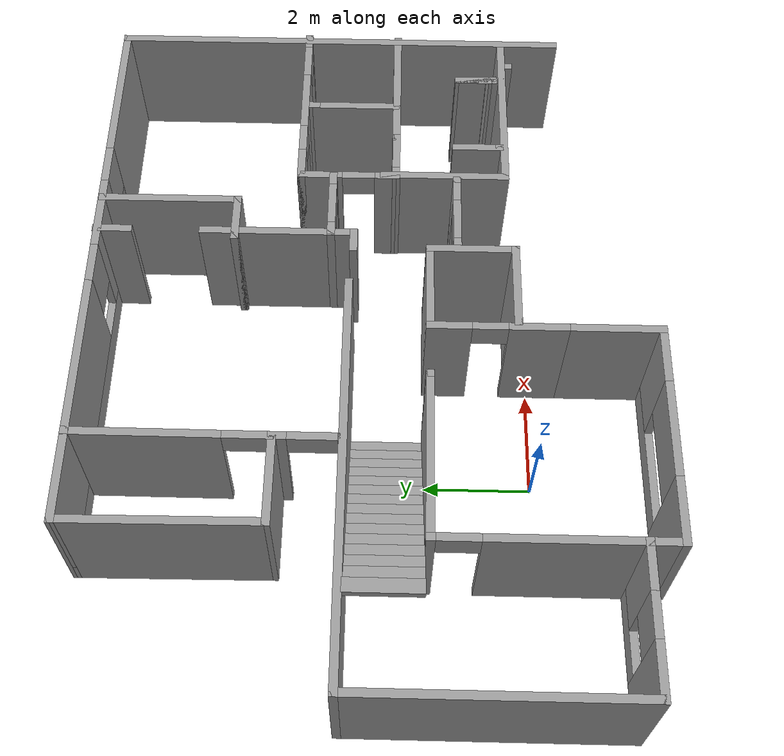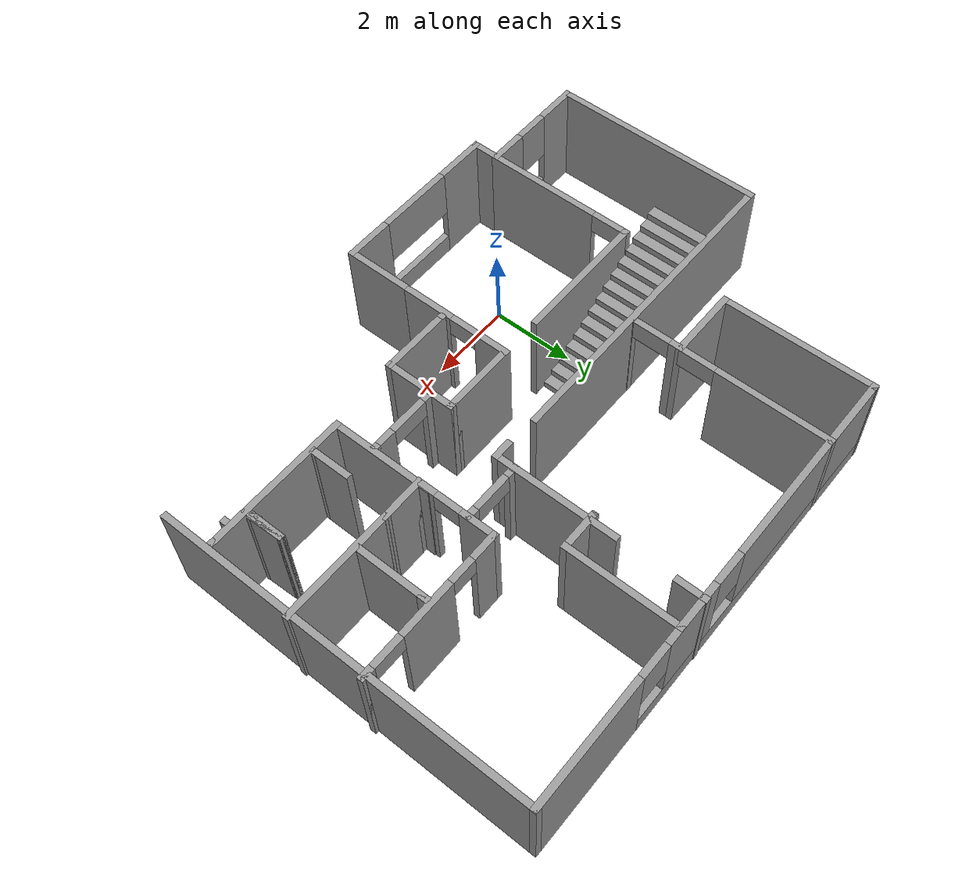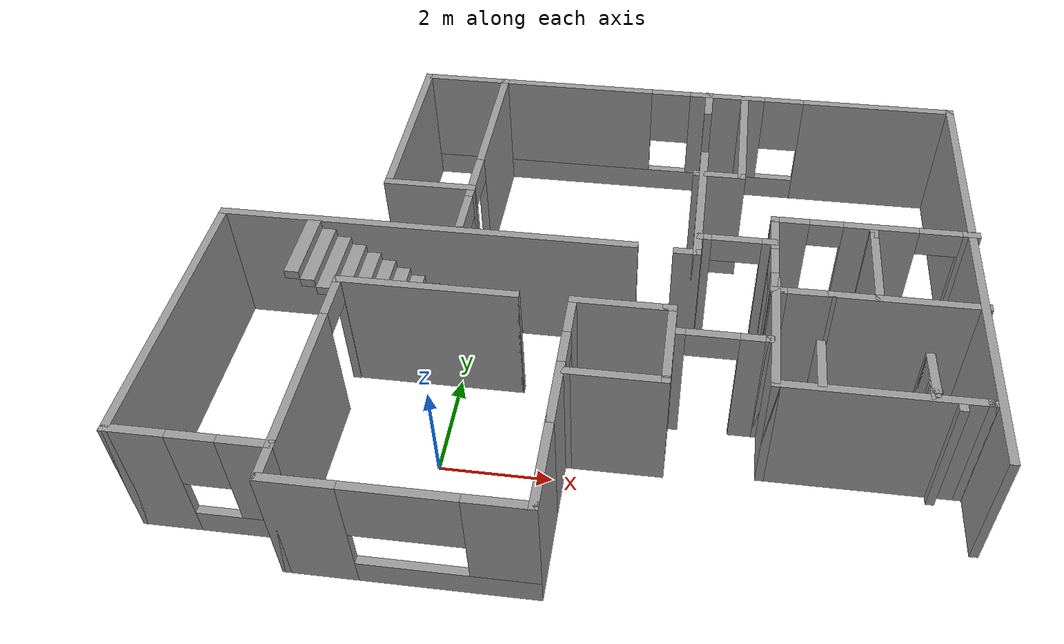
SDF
<sdf version="1.7">
 <model name="Floorplan4">
  <pose>2.26268 3.01833 0 0 -0 0</pose>
  <link name="Stairs_0">
   <visual name="Stairs_0_Visual_0">
    <pose>-1.48224 -0.300305 0.083333 0 -0 -1.5708</pose>
    <geometry><box><size>1.373 0.259133 0.166667</size></box></geometry>
    <material>
     <script><uri>file://media/materials/scripts/gazebo.material</uri><name>Gazebo/Grey</name></script>
     <ambient>1 1 1 1</ambient>
    </material>
    <meta><layer>0</layer></meta>
   </visual>
   <collision name="Stairs_0_Collision_0">
    <geometry><box><size>1.373 0.259133 0.166667</size></box></geometry>
    <pose>-1.48224 -0.300305 0.083333 0 -0 -1.5708</pose>
   </collision>
   <visual name="Stairs_0_Visual_1">
    <pose>-1.74138 -0.300305 0.25 0 -0 -1.5708</pose>
    <geometry><box><size>1.373 0.259133 0.166667</size></box></geometry>
    <material>
     <script><uri>file://media/materials/scripts/gazebo.material</uri><name>Gazebo/Grey</name></script>
     <ambient>1 1 1 1</ambient>
    </material>
    <meta><layer>0</layer></meta>
   </visual>
   <collision name="Stairs_0_Collision_1">
    <geometry><box><size>1.373 0.259133 0.166667</size></box></geometry>
    <pose>-1.74138 -0.300305 0.25 0 -0 -1.5708</pose>
   </collision>
   <visual name="Stairs_0_Visual_2">
    <pose>-2.00051 -0.300305 0.416667 0 -0 -1.5708</pose>
    <geometry><box><size>1.373 0.259133 0.166667</size></box></geometry>
    <material>
     <script><uri>file://media/materials/scripts/gazebo.material</uri><name>Gazebo/Grey</name></script>
     <ambient>1 1 1 1</ambient>
    </material>
    <meta><layer>0</layer></meta>
   </visual>
   <collision name="Stairs_0_Collision_2">
    <geometry><box><size>1.373 0.259133 0.166667</size></box></geometry>
    <pose>-2.00051 -0.300305 0.416667 0 -0 -1.5708</pose>
   </collision>
   <visual name="Stairs_0_Visual_3">
    <pose>-2.25964 -0.300305 0.583333 0 -0 -1.5708</pose>
    <geometry><box><size>1.373 0.259133 0.166667</size></box></geometry>
    <material>
     <script><uri>file://media/materials/scripts/gazebo.material</uri><name>Gazebo/Grey</name></script>
     <ambient>1 1 1 1</ambient>
    </material>
    <meta><layer>0</layer></meta>
   </visual>
   <collision name="Stairs_0_Collision_3">
    <geometry><box><size>1.373 0.259133 0.166667</size></box></geometry>
    <pose>-2.25964 -0.300305 0.583333 0 -0 -1.5708</pose>
   </collision>
   <visual name="Stairs_0_Visual_4">
    <pose>-2.51878 -0.300305 0.75 0 -0 -1.5708</pose>
    <geometry><box><size>1.373 0.259133 0.166667</size></box></geometry>
    <material>
     <script><uri>file://media/materials/scripts/gazebo.material</uri><name>Gazebo/Grey</name></script>
     <ambient>1 1 1 1</ambient>
    </material>
    <meta><layer>0</layer></meta>
   </visual>
   <collision name="Stairs_0_Collision_4">
    <geometry><box><size>1.373 0.259133 0.166667</size></box></geometry>
    <pose>-2.51878 -0.300305 0.75 0 -0 -1.5708</pose>
   </collision>
   <visual name="Stairs_0_Visual_5">
    <pose>-2.77791 -0.300305 0.916667 0 -0 -1.5708</pose>
    <geometry><box><size>1.373 0.259133 0.166667</size></box></geometry>
    <material>
     <script><uri>file://media/materials/scripts/gazebo.material</uri><name>Gazebo/Grey</name></script>
     <ambient>1 1 1 1</ambient>
    </material>
    <meta><layer>0</layer></meta>
   </visual>
   <collision name="Stairs_0_Collision_5">
    <geometry><box><size>1.373 0.259133 0.166667</size></box></geometry>
    <pose>-2.77791 -0.300305 0.916667 0 -0 -1.5708</pose>
   </collision>
   <visual name="Stairs_0_Visual_6">
    <pose>-3.03704 -0.300305 1.08333 0 -0 -1.5708</pose>
    <geometry><box><size>1.373 0.259133 0.166667</size></box></geometry>
    <material>
     <script><uri>file://media/materials/scripts/gazebo.material</uri><name>Gazebo/Grey</name></script>
     <ambient>1 1 1 1</ambient>
    </material>
    <meta><layer>0</layer></meta>
   </visual>
   <collision name="Stairs_0_Collision_6">
    <geometry><box><size>1.373 0.259133 0.166667</size></box></geometry>
    <pose>-3.03704 -0.300305 1.08333 0 -0 -1.5708</pose>
   </collision>
   <visual name="Stairs_0_Visual_7">
    <pose>-3.29618 -0.300305 1.25 0 -0 -1.5708</pose>
    <geometry><box><size>1.373 0.259133 0.166667</size></box></geometry>
    <material>
     <script><uri>file://media/materials/scripts/gazebo.material</uri><name>Gazebo/Grey</name></script>
     <ambient>1 1 1 1</ambient>
    </material>
    <meta><layer>0</layer></meta>
   </visual>
   <collision name="Stairs_0_Collision_7">
    <geometry><box><size>1.373 0.259133 0.166667</size></box></geometry>
    <pose>-3.29618 -0.300305 1.25 0 -0 -1.5708</pose>
   </collision>
   <visual name="Stairs_0_Visual_8">
    <pose>-3.55531 -0.300305 1.41667 0 -0 -1.5708</pose>
    <geometry><box><size>1.373 0.259133 0.166667</size></box></geometry>
    <material>
     <script><uri>file://media/materials/scripts/gazebo.material</uri><name>Gazebo/Grey</name></script>
     <ambient>1 1 1 1</ambient>
    </material>
    <meta><layer>0</layer></meta>
   </visual>
   <collision name="Stairs_0_Collision_8">
    <geometry><box><size>1.373 0.259133 0.166667</size></box></geometry>
    <pose>-3.55531 -0.300305 1.41667 0 -0 -1.5708</pose>
   </collision>
   <visual name="Stairs_0_Visual_9">
    <pose>-3.81444 -0.300305 1.58333 0 -0 -1.5708</pose>
    <geometry><box><size>1.373 0.259133 0.166667</size></box></geometry>
    <material>
     <script><uri>file://media/materials/scripts/gazebo.material</uri><name>Gazebo/Grey</name></script>
     <ambient>1 1 1 1</ambient>
    </material>
    <meta><layer>0</layer></meta>
   </visual>
   <collision name="Stairs_0_Collision_9">
    <geometry><box><size>1.373 0.259133 0.166667</size></box></geometry>
    <pose>-3.81444 -0.300305 1.58333 0 -0 -1.5708</pose>
   </collision>
   <visual name="Stairs_0_Visual_10">
    <pose>-4.07358 -0.300305 1.75 0 -0 -1.5708</pose>
    <geometry><box><size>1.373 0.259133 0.166667</size></box></geometry>
    <material>
     <script><uri>file://media/materials/scripts/gazebo.material</uri><name>Gazebo/Grey</name></script>
     <ambient>1 1 1 1</ambient>
    </material>
    <meta><layer>0</layer></meta>
   </visual>
   <collision name="Stairs_0_Collision_10">
    <geometry><box><size>1.373 0.259133 0.166667</size></box></geometry>
    <pose>-4.07358 -0.300305 1.75 0 -0 -1.5708</pose>
   </collision>
   <visual name="Stairs_0_Visual_11">
    <pose>-4.33271 -0.300305 1.91667 0 -0 -1.5708</pose>
    <geometry><box><size>1.373 0.259133 0.166667</size></box></geometry>
    <material>
     <script><uri>file://media/materials/scripts/gazebo.material</uri><name>Gazebo/Grey</name></script>
     <ambient>1 1 1 1</ambient>
    </material>
    <meta><layer>0</layer></meta>
   </visual>
   <collision name="Stairs_0_Collision_11">
    <geometry><box><size>1.373 0.259133 0.166667</size></box></geometry>
    <pose>-4.33271 -0.300305 1.91667 0 -0 -1.5708</pose>
   </collision>
   <visual name="Stairs_0_Visual_12">
    <pose>-4.59184 -0.300305 2.08333 0 -0 -1.5708</pose>
    <geometry><box><size>1.373 0.259133 0.166667</size></box></geometry>
    <material>
     <script><uri>file://media/materials/scripts/gazebo.material</uri><name>Gazebo/Grey</name></script>
     <ambient>1 1 1 1</ambient>
    </material>
    <meta><layer>0</layer></meta>
   </visual>
   <collision name="Stairs_0_Collision_12">
    <geometry><box><size>1.373 0.259133 0.166667</size></box></geometry>
    <pose>-4.59184 -0.300305 2.08333 0 -0 -1.5708</pose>
   </collision>
   <visual name="Stairs_0_Visual_13">
    <pose>-4.85098 -0.300305 2.25 0 -0 -1.5708</pose>
    <geometry><box><size>1.373 0.259133 0.166667</size></box></geometry>
    <material>
     <script><uri>file://media/materials/scripts/gazebo.material</uri><name>Gazebo/Grey</name></script>
     <ambient>1 1 1 1</ambient>
    </material>
    <meta><layer>0</layer></meta>
   </visual>
   <collision name="Stairs_0_Collision_13">
    <geometry><box><size>1.373 0.259133 0.166667</size></box></geometry>
    <pose>-4.85098 -0.300305 2.25 0 -0 -1.5708</pose>
   </collision>
   <visual name="Stairs_0_Visual_14">
    <pose>-5.11011 -0.300305 2.41667 0 -0 -1.5708</pose>
    <geometry><box><size>1.373 0.259133 0.166667</size></box></geometry>
    <material>
     <script><uri>file://media/materials/scripts/gazebo.material</uri><name>Gazebo/Grey</name></script>
     <ambient>1 1 1 1</ambient>
    </material>
    <meta><layer>0</layer></meta>
   </visual>
   <collision name="Stairs_0_Collision_14">
    <geometry><box><size>1.373 0.259133 0.166667</size></box></geometry>
    <pose>-5.11011 -0.300305 2.41667 0 -0 -1.5708</pose>
   </collision>
  </link>
  <link name="Wall_0">
   <collision name="Wall_0_Collision">
    <geometry><box><size>9 0.15 2.5</size></box></geometry>
    <pose>0 0 1.25 0 -0 0</pose>
   </collision>
   <visual name="Wall_0_Visual">
    <pose>0 0 1.25 0 -0 0</pose>
    <geometry><box><size>9 0.15 2.5</size></box></geometry>
    <material>
     <script><uri>file://media/materials/scripts/gazebo.material</uri><name>Gazebo/Grey</name></script>
     <ambient>1 1 1 1</ambient>
    </material>
    <meta><layer>0</layer></meta>
   </visual>
   <pose>6.77354 0.814241 0 0 -0 1.5708</pose>
  </link>
  <link name="Wall_11">
   <collision name="Wall_11_Collision">
    <geometry><box><size>0.75 0.15 2.5</size></box></geometry>
    <pose>0 0 1.25 0 -0 0</pose>
   </collision>
   <visual name="Wall_11_Visual">
    <pose>0 0 1.25 0 -0 0</pose>
    <geometry><box><size>0.75 0.15 2.5</size></box></geometry>
    <material>
     <script><uri>file://media/materials/scripts/gazebo.material</uri><name>Gazebo/Grey</name></script>
     <ambient>1 1 1 1</ambient>
    </material>
    <meta><layer>0</layer></meta>
   </visual>
   <pose>1.87688 4.95601 0 0 -0 1.5708</pose>
  </link>
  <link name="Wall_13">
   <collision name="Wall_13_Collision">
    <geometry><box><size>2.75 0.15 2.5</size></box></geometry>
    <pose>0 0 1.25 0 -0 0</pose>
   </collision>
   <visual name="Wall_13_Visual">
    <pose>0 0 1.25 0 -0 0</pose>
    <geometry><box><size>2.75 0.15 2.5</size></box></geometry>
    <material>
     <script><uri>file://media/materials/scripts/gazebo.material</uri><name>Gazebo/Grey</name></script>
     <ambient>1 1 1 1</ambient>
    </material>
    <meta><layer>0</layer></meta>
   </visual>
   <pose>2.60855 3.92948 0 0 -0 -1.5708</pose>
  </link>
  <link name="Wall_14">
   <collision name="Wall_14_Collision">
    <geometry><box><size>1 0.15 2.5</size></box></geometry>
    <pose>0 0 1.25 0 -0 0</pose>
   </collision>
   <visual name="Wall_14_Visual">
    <pose>0 0 1.25 0 -0 0</pose>
    <geometry><box><size>1 0.15 2.5</size></box></geometry>
    <material>
     <script><uri>file://media/materials/scripts/gazebo.material</uri><name>Gazebo/Grey</name></script>
     <ambient>1 1 1 1</ambient>
    </material>
    <meta><layer>0</layer></meta>
   </visual>
   <pose>2.18355 2.62948 0 0 -0 3.14159</pose>
  </link>
  <link name="Wall_15">
   <collision name="Wall_15_Collision">
    <geometry><box><size>0.15 0.15 2.5</size></box></geometry>
    <pose>0 0 1.25 0 -0 0</pose>
   </collision>
   <visual name="Wall_15_Visual">
    <pose>0 0 1.25 0 -0 0</pose>
    <geometry><box><size>0.15 0.15 2.5</size></box></geometry>
    <material>
     <script><uri>file://media/materials/scripts/gazebo.material</uri><name>Gazebo/Grey</name></script>
     <ambient>1 1 1 1</ambient>
    </material>
    <meta><layer>0</layer></meta>
   </visual>
   <pose>1.75855 2.62948 0 0 -0 0</pose>
  </link>
  <link name="Wall_17">
   <collision name="Wall_17_Collision">
    <geometry><box><size>3 0.15 2.5</size></box></geometry>
    <pose>0 0 1.25 0 -0 0</pose>
   </collision>
   <visual name="Wall_17_Visual">
    <pose>0 0 1.25 0 -0 0</pose>
    <geometry><box><size>3 0.15 2.5</size></box></geometry>
    <material>
     <script><uri>file://media/materials/scripts/gazebo.material</uri><name>Gazebo/Grey</name></script>
     <ambient>1 1 1 1</ambient>
    </material>
    <meta><layer>0</layer></meta>
   </visual>
   <pose>1.87688 1.80723 0 0 -0 -1.5708</pose>
  </link>
  <link name="Wall_18">
   <collision name="Wall_18_Collision">
    <geometry><box><size>0.5 0.15 2.5</size></box></geometry>
    <pose>0 0 1.25 0 -0 0</pose>
   </collision>
   <visual name="Wall_18_Visual">
    <pose>0 0 1.25 0 -0 0</pose>
    <geometry><box><size>0.5 0.15 2.5</size></box></geometry>
    <material>
     <script><uri>file://media/materials/scripts/gazebo.material</uri><name>Gazebo/Grey</name></script>
     <ambient>1 1 1 1</ambient>
    </material>
    <meta><layer>0</layer></meta>
   </visual>
   <pose>1.70188 0.38223 0 0 -0 3.14159</pose>
  </link>
  <link name="Wall_20">
   <collision name="Wall_20_Collision">
    <geometry><box><size>7.75 0.15 2.5</size></box></geometry>
    <pose>0 0 1.25 0 -0 0</pose>
   </collision>
   <visual name="Wall_20_Visual">
    <pose>0 0 1.25 0 -0 0</pose>
    <geometry><box><size>7.75 0.15 2.5</size></box></geometry>
    <material>
     <script><uri>file://media/materials/scripts/gazebo.material</uri><name>Gazebo/Grey</name></script>
     <ambient>1 1 1 1</ambient>
    </material>
    <meta><layer>0</layer></meta>
   </visual>
   <pose>-3.05028 0.443986 0 0 -0 3.14159</pose>
  </link>
  <link name="Wall_21">
   <collision name="Wall_21_Collision">
    <geometry><box><size>5.25 0.15 2.5</size></box></geometry>
    <pose>0 0 1.25 0 -0 0</pose>
   </collision>
   <visual name="Wall_21_Visual">
    <pose>0 0 1.25 0 -0 0</pose>
    <geometry><box><size>5.25 0.15 2.5</size></box></geometry>
    <material>
     <script><uri>file://media/materials/scripts/gazebo.material</uri><name>Gazebo/Grey</name></script>
     <ambient>1 1 1 1</ambient>
    </material>
    <meta><layer>0</layer></meta>
   </visual>
   <pose>-6.85028 -2.10601 0 0 -0 -1.5708</pose>
  </link>
  <link name="Wall_22">
   <pose>-5.55028 -4.65601 0 0 -0 0</pose>
   <visual name="Wall_22_Visual_0">
    <pose>-0.858994 0 1.25 0 -0 0</pose>
    <geometry><box><size>1.03201 0.15 2.5</size></box></geometry>
    <material>
     <script><uri>file://media/materials/scripts/gazebo.material</uri><name>Gazebo/Grey</name></script>
     <ambient>1 1 1 1</ambient>
    </material>
    <meta><layer>0</layer></meta>
   </visual>
   <collision name="Wall_22_Collision_0">
    <geometry><box><size>1.03201 0.15 2.5</size></box></geometry>
    <pose>-0.858994 0 1.25 0 -0 0</pose>
   </collision>
   <visual name="Wall_22_Visual_1">
    <pose>0.516006 0 0.25 0 -0 0</pose>
    <geometry><box><size>1.71799 0.15 0.5</size></box></geometry>
    <material>
     <script><uri>file://media/materials/scripts/gazebo.material</uri><name>Gazebo/Grey</name></script>
     <ambient>1 1 1 1</ambient>
    </material>
    <meta><layer>0</layer></meta>
   </visual>
   <collision name="Wall_22_Collision_1">
    <geometry><box><size>1.71799 0.15 0.5</size></box></geometry>
    <pose>0.516006 0 0.25 0 -0 0</pose>
   </collision>
   <visual name="Wall_22_Visual_2">
    <pose>0.916006 0 1.5 0 -0 0</pose>
    <geometry><box><size>0.917989 0.15 2</size></box></geometry>
    <material>
     <script><uri>file://media/materials/scripts/gazebo.material</uri><name>Gazebo/Grey</name></script>
     <ambient>1 1 1 1</ambient>
    </material>
    <meta><layer>0</layer></meta>
   </visual>
   <collision name="Wall_22_Collision_2">
    <geometry><box><size>0.917989 0.15 2</size></box></geometry>
    <pose>0.916006 0 1.5 0 -0 0</pose>
   </collision>
   <visual name="Wall_22_Visual_3">
    <pose>0.057011 0 1.9 0 -0 0</pose>
    <geometry><box><size>0.8 0.15 1.2</size></box></geometry>
    <material>
     <script><uri>file://media/materials/scripts/gazebo.material</uri><name>Gazebo/Grey</name></script>
     <ambient>1 1 1 1</ambient>
    </material>
    <meta><layer>0</layer></meta>
   </visual>
   <collision name="Wall_22_Collision_3">
    <geometry><box><size>0.8 0.15 1.2</size></box></geometry>
    <pose>0.057011 0 1.9 0 -0 0</pose>
   </collision>
  </link>
  <link name="Wall_23">
   <collision name="Wall_23_Collision">
    <geometry><box><size>0.75 0.15 2.5</size></box></geometry>
    <pose>0 0 1.25 0 -0 0</pose>
   </collision>
   <visual name="Wall_23_Visual">
    <pose>0 0 1.25 0 -0 0</pose>
    <geometry><box><size>0.75 0.15 2.5</size></box></geometry>
    <material>
     <script><uri>file://media/materials/scripts/gazebo.material</uri><name>Gazebo/Grey</name></script>
     <ambient>1 1 1 1</ambient>
    </material>
    <meta><layer>0</layer></meta>
   </visual>
   <pose>-4.25028 -4.95601 0 0 -0 -1.5708</pose>
  </link>
  <link name="Wall_24">
   <pose>-2.20028 -5.25601 0 0 -0 0</pose>
   <visual name="Wall_24_Visual_0">
    <pose>-1.49218 0 1.25 0 -0 0</pose>
    <geometry><box><size>1.26565 0.15 2.5</size></box></geometry>
    <material>
     <script><uri>file://media/materials/scripts/gazebo.material</uri><name>Gazebo/Grey</name></script>
     <ambient>1 1 1 1</ambient>
    </material>
    <meta><layer>0</layer></meta>
   </visual>
   <collision name="Wall_24_Collision_0">
    <geometry><box><size>1.26565 0.15 2.5</size></box></geometry>
    <pose>-1.49218 0 1.25 0 -0 0</pose>
   </collision>
   <visual name="Wall_24_Visual_1">
    <pose>0.632824 0 0.25 0 -0 0</pose>
    <geometry><box><size>2.98435 0.15 0.5</size></box></geometry>
    <material>
     <script><uri>file://media/materials/scripts/gazebo.material</uri><name>Gazebo/Grey</name></script>
     <ambient>1 1 1 1</ambient>
    </material>
    <meta><layer>0</layer></meta>
   </visual>
   <collision name="Wall_24_Collision_1">
    <geometry><box><size>2.98435 0.15 0.5</size></box></geometry>
    <pose>0.632824 0 0.25 0 -0 0</pose>
   </collision>
   <visual name="Wall_24_Visual_2">
    <pose>1.55421 0 1.5 0 -0 0</pose>
    <geometry><box><size>1.14157 0.15 2</size></box></geometry>
    <material>
     <script><uri>file://media/materials/scripts/gazebo.material</uri><name>Gazebo/Grey</name></script>
     <ambient>1 1 1 1</ambient>
    </material>
    <meta><layer>0</layer></meta>
   </visual>
   <collision name="Wall_24_Collision_2">
    <geometry><box><size>1.14157 0.15 2</size></box></geometry>
    <pose>1.55421 0 1.5 0 -0 0</pose>
   </collision>
   <visual name="Wall_24_Visual_3">
    <pose>0.062037 0 1.9 0 -0 0</pose>
    <geometry><box><size>1.84278 0.15 1.2</size></box></geometry>
    <material>
     <script><uri>file://media/materials/scripts/gazebo.material</uri><name>Gazebo/Grey</name></script>
     <ambient>1 1 1 1</ambient>
    </material>
    <meta><layer>0</layer></meta>
   </visual>
   <collision name="Wall_24_Collision_3">
    <geometry><box><size>1.84278 0.15 1.2</size></box></geometry>
    <pose>0.062037 0 1.9 0 -0 0</pose>
   </collision>
  </link>
  <link name="Wall_25">
   <collision name="Wall_25_Collision">
    <geometry><box><size>1.75 0.15 2.5</size></box></geometry>
    <pose>0 0 1.25 0 -0 0</pose>
   </collision>
   <visual name="Wall_25_Visual">
    <pose>0 0 1.25 0 -0 0</pose>
    <geometry><box><size>1.75 0.15 2.5</size></box></geometry>
    <material>
     <script><uri>file://media/materials/scripts/gazebo.material</uri><name>Gazebo/Grey</name></script>
     <ambient>1 1 1 1</ambient>
    </material>
    <meta><layer>0</layer></meta>
   </visual>
   <pose>-0.150279 -4.45601 0 0 -0 1.5708</pose>
  </link>
  <link name="Wall_26">
   <pose>-0.150279 -2.35601 0 0 -0 1.5708</pose>
   <visual name="Wall_26_Visual_0">
    <pose>-0.749014 0 1.25 0 -0 0</pose>
    <geometry><box><size>1.25197 0.15 2.5</size></box></geometry>
    <material>
     <script><uri>file://media/materials/scripts/gazebo.material</uri><name>Gazebo/Grey</name></script>
     <ambient>1 1 1 1</ambient>
    </material>
    <meta><layer>0</layer></meta>
   </visual>
   <collision name="Wall_26_Collision_0">
    <geometry><box><size>1.25197 0.15 2.5</size></box></geometry>
    <pose>-0.749014 0 1.25 0 -0 0</pose>
   </collision>
   <visual name="Wall_26_Visual_1">
    <pose>0.956973 0 1.25 0 -0 0</pose>
    <geometry><box><size>0.836053 0.15 2.5</size></box></geometry>
    <material>
     <script><uri>file://media/materials/scripts/gazebo.material</uri><name>Gazebo/Grey</name></script>
     <ambient>1 1 1 1</ambient>
    </material>
    <meta><layer>0</layer></meta>
   </visual>
   <collision name="Wall_26_Collision_1">
    <geometry><box><size>0.836053 0.15 2.5</size></box></geometry>
    <pose>0.956973 0 1.25 0 -0 0</pose>
   </collision>
   <visual name="Wall_26_Visual_2">
    <pose>0.20796 0 2.25 0 -0 0</pose>
    <geometry><box><size>0.661975 0.15 0.5</size></box></geometry>
    <material>
     <script><uri>file://media/materials/scripts/gazebo.material</uri><name>Gazebo/Grey</name></script>
     <ambient>1 1 1 1</ambient>
    </material>
    <meta><layer>0</layer></meta>
   </visual>
   <collision name="Wall_26_Collision_2">
    <geometry><box><size>0.661975 0.15 0.5</size></box></geometry>
    <pose>0.20796 0 2.25 0 -0 0</pose>
   </collision>
  </link>
  <link name="Wall_27">
   <collision name="Wall_27_Collision">
    <geometry><box><size>1.75 0.15 2.5</size></box></geometry>
    <pose>0 0 1.25 0 -0 0</pose>
   </collision>
   <visual name="Wall_27_Visual">
    <pose>0 0 1.25 0 -0 0</pose>
    <geometry><box><size>1.75 0.15 2.5</size></box></geometry>
    <material>
     <script><uri>file://media/materials/scripts/gazebo.material</uri><name>Gazebo/Grey</name></script>
     <ambient>1 1 1 1</ambient>
    </material>
    <meta><layer>0</layer></meta>
   </visual>
   <pose>0.649721 -1.05601 0 0 -0 0</pose>
  </link>
  <link name="Wall_28">
   <collision name="Wall_28_Collision">
    <geometry><box><size>0.25 0.15 2.5</size></box></geometry>
    <pose>0 0 1.25 0 -0 0</pose>
   </collision>
   <visual name="Wall_28_Visual">
    <pose>0 0 1.25 0 -0 0</pose>
    <geometry><box><size>0.25 0.15 2.5</size></box></geometry>
    <material>
     <script><uri>file://media/materials/scripts/gazebo.material</uri><name>Gazebo/Grey</name></script>
     <ambient>1 1 1 1</ambient>
    </material>
    <meta><layer>0</layer></meta>
   </visual>
   <pose>1.49972 -1.05601 0 0 -0 0</pose>
  </link>
  <link name="Wall_29">
   <collision name="Wall_29_Collision">
    <geometry><box><size>1.75 0.15 2.5</size></box></geometry>
    <pose>0 0 1.25 0 -0 0</pose>
   </collision>
   <visual name="Wall_29_Visual">
    <pose>0 0 1.25 0 -0 0</pose>
    <geometry><box><size>1.75 0.15 2.5</size></box></geometry>
    <material>
     <script><uri>file://media/materials/scripts/gazebo.material</uri><name>Gazebo/Grey</name></script>
     <ambient>1 1 1 1</ambient>
    </material>
    <meta><layer>0</layer></meta>
   </visual>
   <pose>1.54972 -1.85601 0 0 -0 -1.5708</pose>
  </link>
  <link name="Wall_3">
   <collision name="Wall_3_Collision">
    <geometry><box><size>0.15 0.15 2.5</size></box></geometry>
    <pose>0 0 1.25 0 -0 0</pose>
   </collision>
   <visual name="Wall_3_Visual">
    <pose>0 0 1.25 0 -0 0</pose>
    <geometry><box><size>0.15 0.15 2.5</size></box></geometry>
    <material>
     <script><uri>file://media/materials/scripts/gazebo.material</uri><name>Gazebo/Grey</name></script>
     <ambient>1 1 1 1</ambient>
    </material>
    <meta><layer>0</layer></meta>
   </visual>
   <pose>6.15788 -2.66213 0 0 -0 0</pose>
  </link>
  <link name="Wall_30">
   <collision name="Wall_30_Collision">
    <geometry><box><size>1.75 0.15 2.5</size></box></geometry>
    <pose>0 0 1.25 0 -0 0</pose>
   </collision>
   <visual name="Wall_30_Visual">
    <pose>0 0 1.25 0 -0 0</pose>
    <geometry><box><size>1.75 0.15 2.5</size></box></geometry>
    <material>
     <script><uri>file://media/materials/scripts/gazebo.material</uri><name>Gazebo/Grey</name></script>
     <ambient>1 1 1 1</ambient>
    </material>
    <meta><layer>0</layer></meta>
   </visual>
   <pose>0.749721 -2.65601 0 0 -0 3.14159</pose>
  </link>
  <link name="Wall_31">
   <collision name="Wall_31_Collision">
    <geometry><box><size>0.15 0.15 2.5</size></box></geometry>
    <pose>0 0 1.25 0 -0 0</pose>
   </collision>
   <visual name="Wall_31_Visual">
    <pose>0 0 1.25 0 -0 0</pose>
    <geometry><box><size>0.15 0.15 2.5</size></box></geometry>
    <material>
     <script><uri>file://media/materials/scripts/gazebo.material</uri><name>Gazebo/Grey</name></script>
     <ambient>1 1 1 1</ambient>
    </material>
    <meta><layer>0</layer></meta>
   </visual>
   <pose>-0.050279 -2.65601 0 0 -0 0</pose>
  </link>
  <link name="Wall_33">
   <pose>-4.25028 -2.85601 0 0 -0 1.5708</pose>
   <visual name="Wall_33_Visual_0">
    <pose>-0.463048 0 1.25 0 -0 0</pose>
    <geometry><box><size>2.8239 0.15 2.5</size></box></geometry>
    <material>
     <script><uri>file://media/materials/scripts/gazebo.material</uri><name>Gazebo/Grey</name></script>
     <ambient>1 1 1 1</ambient>
    </material>
    <meta><layer>0</layer></meta>
   </visual>
   <collision name="Wall_33_Collision_0">
    <geometry><box><size>2.8239 0.15 2.5</size></box></geometry>
    <pose>-0.463048 0 1.25 0 -0 0</pose>
   </collision>
   <visual name="Wall_33_Visual_1">
    <pose>1.7945 0 1.25 0 -0 0</pose>
    <geometry><box><size>0.161005 0.15 2.5</size></box></geometry>
    <material>
     <script><uri>file://media/materials/scripts/gazebo.material</uri><name>Gazebo/Grey</name></script>
     <ambient>1 1 1 1</ambient>
    </material>
    <meta><layer>0</layer></meta>
   </visual>
   <collision name="Wall_33_Collision_1">
    <geometry><box><size>0.161005 0.15 2.5</size></box></geometry>
    <pose>1.7945 0 1.25 0 -0 0</pose>
   </collision>
   <visual name="Wall_33_Visual_2">
    <pose>1.33145 0 2.25 0 -0 0</pose>
    <geometry><box><size>0.765091 0.15 0.5</size></box></geometry>
    <material>
     <script><uri>file://media/materials/scripts/gazebo.material</uri><name>Gazebo/Grey</name></script>
     <ambient>1 1 1 1</ambient>
    </material>
    <meta><layer>0</layer></meta>
   </visual>
   <collision name="Wall_33_Collision_2">
    <geometry><box><size>0.765091 0.15 0.5</size></box></geometry>
    <pose>1.33145 0 2.25 0 -0 0</pose>
   </collision>
  </link>
  <link name="Wall_34">
   <collision name="Wall_34_Collision">
    <geometry><box><size>3.25 0.15 2.5</size></box></geometry>
    <pose>0 0 1.25 0 -0 0</pose>
   </collision>
   <visual name="Wall_34_Visual">
    <pose>0 0 1.25 0 -0 0</pose>
    <geometry><box><size>3.25 0.15 2.5</size></box></geometry>
    <material>
     <script><uri>file://media/materials/scripts/gazebo.material</uri><name>Gazebo/Grey</name></script>
     <ambient>1 1 1 1</ambient>
    </material>
    <meta><layer>0</layer></meta>
   </visual>
   <pose>-2.70028 -1.05601 0 0 -0 0</pose>
  </link>
  <link name="Wall_35">
   <collision name="Wall_35_Collision">
    <geometry><box><size>0.15 0.15 2.5</size></box></geometry>
    <pose>0 0 1.25 0 -0 0</pose>
   </collision>
   <visual name="Wall_35_Visual">
    <pose>0 0 1.25 0 -0 0</pose>
    <geometry><box><size>0.15 0.15 2.5</size></box></geometry>
    <material>
     <script><uri>file://media/materials/scripts/gazebo.material</uri><name>Gazebo/Grey</name></script>
     <ambient>1 1 1 1</ambient>
    </material>
    <meta><layer>0</layer></meta>
   </visual>
   <pose>-1.15028 -1.05601 0 0 -0 0</pose>
  </link>
  <link name="Wall_37">
   <pose>2.37196 -1.57624 0 0 -0 0</pose>
   <visual name="Wall_37_Visual_0">
    <pose>-0.726541 0 1.25 0 -0 0</pose>
    <geometry><box><size>0.296918 0.15 2.5</size></box></geometry>
    <material>
     <script><uri>file://media/materials/scripts/gazebo.material</uri><name>Gazebo/Grey</name></script>
     <ambient>1 1 1 1</ambient>
    </material>
    <meta><layer>0</layer></meta>
   </visual>
   <collision name="Wall_37_Collision_0">
    <geometry><box><size>0.296918 0.15 2.5</size></box></geometry>
    <pose>-0.726541 0 1.25 0 -0 0</pose>
   </collision>
   <visual name="Wall_37_Visual_1">
    <pose>0.598459 0 1.25 0 -0 0</pose>
    <geometry><box><size>0.553082 0.15 2.5</size></box></geometry>
    <material>
     <script><uri>file://media/materials/scripts/gazebo.material</uri><name>Gazebo/Grey</name></script>
     <ambient>1 1 1 1</ambient>
    </material>
    <meta><layer>0</layer></meta>
   </visual>
   <collision name="Wall_37_Collision_1">
    <geometry><box><size>0.553082 0.15 2.5</size></box></geometry>
    <pose>0.598459 0 1.25 0 -0 0</pose>
   </collision>
   <visual name="Wall_37_Visual_2">
    <pose>-0.128082 0 2.25 0 -0 0</pose>
    <geometry><box><size>0.9 0.15 0.5</size></box></geometry>
    <material>
     <script><uri>file://media/materials/scripts/gazebo.material</uri><name>Gazebo/Grey</name></script>
     <ambient>1 1 1 1</ambient>
    </material>
    <meta><layer>0</layer></meta>
   </visual>
   <collision name="Wall_37_Collision_2">
    <geometry><box><size>0.9 0.15 0.5</size></box></geometry>
    <pose>-0.128082 0 2.25 0 -0 0</pose>
   </collision>
  </link>
  <link name="Wall_38">
   <collision name="Wall_38_Collision">
    <geometry><box><size>0.15 0.15 2.5</size></box></geometry>
    <pose>0 0 1.25 0 -0 0</pose>
   </collision>
   <visual name="Wall_38_Visual">
    <pose>0 0 1.25 0 -0 0</pose>
    <geometry><box><size>0.15 0.15 2.5</size></box></geometry>
    <material>
     <script><uri>file://media/materials/scripts/gazebo.material</uri><name>Gazebo/Grey</name></script>
     <ambient>1 1 1 1</ambient>
    </material>
    <meta><layer>0</layer></meta>
   </visual>
   <pose>3.18182 -1.57624 0 0 -0 0</pose>
  </link>
  <link name="Wall_40">
   <collision name="Wall_40_Collision">
    <geometry><box><size>2.5 0.15 2.5</size></box></geometry>
    <pose>0 0 1.25 0 -0 0</pose>
   </collision>
   <visual name="Wall_40_Visual">
    <pose>0 0 1.25 0 -0 0</pose>
    <geometry><box><size>2.5 0.15 2.5</size></box></geometry>
    <material>
     <script><uri>file://media/materials/scripts/gazebo.material</uri><name>Gazebo/Grey</name></script>
     <ambient>1 1 1 1</ambient>
    </material>
    <meta><layer>0</layer></meta>
   </visual>
   <pose>3.27302 -1.3413 0 0 -0 -1.5708</pose>
  </link>
  <link name="Wall_41">
   <collision name="Wall_41_Collision">
    <geometry><box><size>3.5 0.15 2.5</size></box></geometry>
    <pose>0 0 1.25 0 -0 0</pose>
   </collision>
   <visual name="Wall_41_Visual">
    <pose>0 0 1.25 0 -0 0</pose>
    <geometry><box><size>3.5 0.15 2.5</size></box></geometry>
    <material>
     <script><uri>file://media/materials/scripts/gazebo.material</uri><name>Gazebo/Grey</name></script>
     <ambient>1 1 1 1</ambient>
    </material>
    <meta><layer>0</layer></meta>
   </visual>
   <pose>4.94802 -2.5163 0 0 -0 0</pose>
  </link>
  <link name="Wall_42">
   <collision name="Wall_42_Collision">
    <geometry><box><size>0.15 0.15 2.5</size></box></geometry>
    <pose>0 0 1.25 0 -0 0</pose>
   </collision>
   <visual name="Wall_42_Visual">
    <pose>0 0 1.25 0 -0 0</pose>
    <geometry><box><size>0.15 0.15 2.5</size></box></geometry>
    <material>
     <script><uri>file://media/materials/scripts/gazebo.material</uri><name>Gazebo/Grey</name></script>
     <ambient>1 1 1 1</ambient>
    </material>
    <meta><layer>0</layer></meta>
   </visual>
   <pose>6.62302 -2.5163 0 0 -0 0</pose>
  </link>
  <link name="Wall_44">
   <collision name="Wall_44_Collision">
    <geometry><box><size>1 0.15 2.5</size></box></geometry>
    <pose>0 0 1.25 0 -0 0</pose>
   </collision>
   <visual name="Wall_44_Visual">
    <pose>0 0 1.25 0 -0 0</pose>
    <geometry><box><size>1 0.15 2.5</size></box></geometry>
    <material>
     <script><uri>file://media/materials/scripts/gazebo.material</uri><name>Gazebo/Grey</name></script>
     <ambient>1 1 1 1</ambient>
    </material>
    <meta><layer>0</layer></meta>
   </visual>
   <pose>4.00073 -2.00124 0 0 -0 -1.5708</pose>
  </link>
  <link name="Wall_45">
   <collision name="Wall_45_Collision">
    <geometry><box><size>0.15 0.15 2.5</size></box></geometry>
    <pose>0 0 1.25 0 -0 0</pose>
   </collision>
   <visual name="Wall_45_Visual">
    <pose>0 0 1.25 0 -0 0</pose>
    <geometry><box><size>0.15 0.15 2.5</size></box></geometry>
    <material>
     <script><uri>file://media/materials/scripts/gazebo.material</uri><name>Gazebo/Grey</name></script>
     <ambient>1 1 1 1</ambient>
    </material>
    <meta><layer>0</layer></meta>
   </visual>
   <pose>4.00073 -2.42624 0 0 -0 0</pose>
  </link>
  <link name="Wall_47">
   <collision name="Wall_47_Collision">
    <geometry><box><size>0.75 0.15 2.5</size></box></geometry>
    <pose>0 0 1.25 0 -0 0</pose>
   </collision>
   <visual name="Wall_47_Visual">
    <pose>0 0 1.25 0 -0 0</pose>
    <geometry><box><size>0.75 0.15 2.5</size></box></geometry>
    <material>
     <script><uri>file://media/materials/scripts/gazebo.material</uri><name>Gazebo/Grey</name></script>
     <ambient>1 1 1 1</ambient>
    </material>
    <meta><layer>0</layer></meta>
   </visual>
   <pose>5.75179 -1.94446 0 0 -0 -1.5708</pose>
  </link>
  <link name="Wall_48">
   <collision name="Wall_48_Collision">
    <geometry><box><size>0.25 0.15 2.5</size></box></geometry>
    <pose>0 0 1.25 0 -0 0</pose>
   </collision>
   <visual name="Wall_48_Visual">
    <pose>0 0 1.25 0 -0 0</pose>
    <geometry><box><size>0.25 0.15 2.5</size></box></geometry>
    <material>
     <script><uri>file://media/materials/scripts/gazebo.material</uri><name>Gazebo/Grey</name></script>
     <ambient>1 1 1 1</ambient>
    </material>
    <meta><layer>0</layer></meta>
   </visual>
   <pose>5.76473 -2.29276 0 0 -0 -1.309</pose>
  </link>
  <link name="Wall_5">
   <pose>1.34854 5.23924 0 0 -0 3.14159</pose>
   <visual name="Wall_5_Visual_0">
    <pose>-3.98357 0 1.25 0 -0 0</pose>
    <geometry><box><size>3.03285 0.15 2.5</size></box></geometry>
    <material>
     <script><uri>file://media/materials/scripts/gazebo.material</uri><name>Gazebo/Grey</name></script>
     <ambient>1 1 1 1</ambient>
    </material>
    <meta><layer>0</layer></meta>
   </visual>
   <collision name="Wall_5_Collision_0">
    <geometry><box><size>3.03285 0.15 2.5</size></box></geometry>
    <pose>-3.98357 0 1.25 0 -0 0</pose>
   </collision>
   <visual name="Wall_5_Visual_1">
    <pose>1.51643 0 0.25 0 -0 0</pose>
    <geometry><box><size>7.96715 0.15 0.5</size></box></geometry>
    <material>
     <script><uri>file://media/materials/scripts/gazebo.material</uri><name>Gazebo/Grey</name></script>
     <ambient>1 1 1 1</ambient>
    </material>
    <meta><layer>0</layer></meta>
   </visual>
   <collision name="Wall_5_Collision_1">
    <geometry><box><size>7.96715 0.15 0.5</size></box></geometry>
    <pose>1.51643 0 0.25 0 -0 0</pose>
   </collision>
   <visual name="Wall_5_Visual_2">
    <pose>-0.899688 0 1.5 0 -0 0</pose>
    <geometry><box><size>1.53492 0.15 2</size></box></geometry>
    <material>
     <script><uri>file://media/materials/scripts/gazebo.material</uri><name>Gazebo/Grey</name></script>
     <ambient>1 1 1 1</ambient>
    </material>
    <meta><layer>0</layer></meta>
   </visual>
   <collision name="Wall_5_Collision_2">
    <geometry><box><size>1.53492 0.15 2</size></box></geometry>
    <pose>-0.899688 0 1.5 0 -0 0</pose>
   </collision>
   <visual name="Wall_5_Visual_3">
    <pose>3.08388 0 1.5 0 -0 0</pose>
    <geometry><box><size>4.83223 0.15 2</size></box></geometry>
    <material>
     <script><uri>file://media/materials/scripts/gazebo.material</uri><name>Gazebo/Grey</name></script>
     <ambient>1 1 1 1</ambient>
    </material>
    <meta><layer>0</layer></meta>
   </visual>
   <collision name="Wall_5_Collision_3">
    <geometry><box><size>4.83223 0.15 2</size></box></geometry>
    <pose>3.08388 0 1.5 0 -0 0</pose>
   </collision>
   <visual name="Wall_5_Visual_4">
    <pose>-2.06715 0 1.9 0 -0 0</pose>
    <geometry><box><size>0.8 0.15 1.2</size></box></geometry>
    <material>
     <script><uri>file://media/materials/scripts/gazebo.material</uri><name>Gazebo/Grey</name></script>
     <ambient>1 1 1 1</ambient>
    </material>
    <meta><layer>0</layer></meta>
   </visual>
   <collision name="Wall_5_Collision_4">
    <geometry><box><size>0.8 0.15 1.2</size></box></geometry>
    <pose>-2.06715 0 1.9 0 -0 0</pose>
   </collision>
   <visual name="Wall_5_Visual_5">
    <pose>0.26777 0 1.9 0 -0 0</pose>
    <geometry><box><size>0.8 0.15 1.2</size></box></geometry>
    <material>
     <script><uri>file://media/materials/scripts/gazebo.material</uri><name>Gazebo/Grey</name></script>
     <ambient>1 1 1 1</ambient>
    </material>
    <meta><layer>0</layer></meta>
   </visual>
   <collision name="Wall_5_Collision_5">
    <geometry><box><size>0.8 0.15 1.2</size></box></geometry>
    <pose>0.26777 0 1.9 0 -0 0</pose>
   </collision>
  </link>
  <link name="Wall_50">
   <collision name="Wall_50_Collision">
    <geometry><box><size>0.847073 0.15 2.5</size></box></geometry>
    <pose>0 0 1.25 0 -0 0</pose>
   </collision>
   <visual name="Wall_50_Visual">
    <pose>0 0 1.25 0 -0 0</pose>
    <geometry><box><size>0.847073 0.15 2.5</size></box></geometry>
    <material>
     <script><uri>file://media/materials/scripts/gazebo.material</uri><name>Gazebo/Grey</name></script>
     <ambient>1 1 1 1</ambient>
    </material>
    <meta><layer>0</layer></meta>
   </visual>
   <pose>5.76473 -1.99276 0 0 -0 1.60793</pose>
  </link>
  <link name="Wall_51">
   <collision name="Wall_51_Collision">
    <geometry><box><size>1 0.15 2.5</size></box></geometry>
    <pose>0 0 1.25 0 -0 0</pose>
   </collision>
   <visual name="Wall_51_Visual">
    <pose>0 0 1.25 0 -0 0</pose>
    <geometry><box><size>1 0.15 2.5</size></box></geometry>
    <material>
     <script><uri>file://media/materials/scripts/gazebo.material</uri><name>Gazebo/Grey</name></script>
     <ambient>1 1 1 1</ambient>
    </material>
    <meta><layer>0</layer></meta>
   </visual>
   <pose>5.75179 -2.06946 0 0 -0 -1.5708</pose>
  </link>
  <link name="Wall_52">
   <collision name="Wall_52_Collision">
    <geometry><box><size>0.15 0.15 2.5</size></box></geometry>
    <pose>0 0 1.25 0 -0 0</pose>
   </collision>
   <visual name="Wall_52_Visual">
    <pose>0 0 1.25 0 -0 0</pose>
    <geometry><box><size>0.15 0.15 2.5</size></box></geometry>
    <material>
     <script><uri>file://media/materials/scripts/gazebo.material</uri><name>Gazebo/Grey</name></script>
     <ambient>1 1 1 1</ambient>
    </material>
    <meta><layer>0</layer></meta>
   </visual>
   <pose>5.75179 -2.49446 0 0 -0 0</pose>
  </link>
  <link name="Wall_54">
   <collision name="Wall_54_Collision">
    <geometry><box><size>2.75 0.15 2.5</size></box></geometry>
    <pose>0 0 1.25 0 -0 0</pose>
   </collision>
   <visual name="Wall_54_Visual">
    <pose>0 0 1.25 0 -0 0</pose>
    <geometry><box><size>2.75 0.15 2.5</size></box></geometry>
    <material>
     <script><uri>file://media/materials/scripts/gazebo.material</uri><name>Gazebo/Grey</name></script>
     <ambient>1 1 1 1</ambient>
    </material>
    <meta><layer>0</layer></meta>
   </visual>
   <pose>5.52062 -0.393709 0 0 -0 3.14159</pose>
  </link>
  <link name="Wall_55">
   <collision name="Wall_55_Collision">
    <geometry><box><size>0.15 0.15 2.5</size></box></geometry>
    <pose>0 0 1.25 0 -0 0</pose>
   </collision>
   <visual name="Wall_55_Visual">
    <pose>0 0 1.25 0 -0 0</pose>
    <geometry><box><size>0.15 0.15 2.5</size></box></geometry>
    <material>
     <script><uri>file://media/materials/scripts/gazebo.material</uri><name>Gazebo/Grey</name></script>
     <ambient>1 1 1 1</ambient>
    </material>
    <meta><layer>0</layer></meta>
   </visual>
   <pose>4.22061 -0.393709 0 0 -0 0</pose>
  </link>
  <link name="Wall_57">
   <pose>3.73545 -0.397699 0 0 -0 -3.13337</pose>
   <visual name="Wall_57_Visual_0">
    <pose>0 0 1.25 0 -0 0</pose>
    <geometry><box><size>1.12037 0.15 2.5</size></box></geometry>
    <material>
     <script><uri>file://media/materials/scripts/gazebo.material</uri><name>Gazebo/Grey</name></script>
     <ambient>1 1 1 1</ambient>
    </material>
    <meta><layer>0</layer></meta>
   </visual>
   <collision name="Wall_57_Collision_0">
    <geometry><box><size>1.12037 0.15 2.5</size></box></geometry>
    <pose>0 0 1.25 0 -0 0</pose>
   </collision>
   <visual name="Wall_57_Visual_1">
    <pose>0.417275 0 1.25 0 -0 0</pose>
    <geometry><box><size>0.285819 0.15 2.5</size></box></geometry>
    <material>
     <script><uri>file://media/materials/scripts/gazebo.material</uri><name>Gazebo/Grey</name></script>
     <ambient>1 1 1 1</ambient>
    </material>
    <meta><layer>0</layer></meta>
   </visual>
   <collision name="Wall_57_Collision_1">
    <geometry><box><size>0.285819 0.15 2.5</size></box></geometry>
    <pose>0.417275 0 1.25 0 -0 0</pose>
   </collision>
  </link>
  <link name="Wall_58">
   <collision name="Wall_58_Collision">
    <geometry><box><size>0.15 0.15 2.5</size></box></geometry>
    <pose>0 0 1.25 0 -0 0</pose>
   </collision>
   <visual name="Wall_58_Visual">
    <pose>0 0 1.25 0 -0 0</pose>
    <geometry><box><size>0.15 0.15 2.5</size></box></geometry>
    <material>
     <script><uri>file://media/materials/scripts/gazebo.material</uri><name>Gazebo/Grey</name></script>
     <ambient>1 1 1 1</ambient>
    </material>
    <meta><layer>0</layer></meta>
   </visual>
   <pose>3.25028 -0.401688 0 0 -0 0</pose>
  </link>
  <link name="Wall_6">
   <collision name="Wall_6_Collision">
    <geometry><box><size>3.69809 0.15 2.5</size></box></geometry>
    <pose>0 0 1.25 0 -0 0</pose>
   </collision>
   <visual name="Wall_6_Visual">
    <pose>0 0 1.25 0 -0 0</pose>
    <geometry><box><size>3.69809 0.15 2.5</size></box></geometry>
    <material>
     <script><uri>file://media/materials/scripts/gazebo.material</uri><name>Gazebo/Grey</name></script>
     <ambient>1 1 1 1</ambient>
    </material>
    <meta><layer>0</layer></meta>
   </visual>
   <pose>-4.06346 3.46525 0 0 -0 -1.56347</pose>
  </link>
  <link name="Wall_60">
   <pose>5.05028 1.44831 0 0 -0 0</pose>
   <visual name="Wall_60_Visual_0">
    <pose>-1.52818 0 1.25 0 -0 0</pose>
    <geometry><box><size>0.693647 0.15 2.5</size></box></geometry>
    <material>
     <script><uri>file://media/materials/scripts/gazebo.material</uri><name>Gazebo/Grey</name></script>
     <ambient>1 1 1 1</ambient>
    </material>
    <meta><layer>0</layer></meta>
   </visual>
   <collision name="Wall_60_Collision_0">
    <geometry><box><size>0.693647 0.15 2.5</size></box></geometry>
    <pose>-1.52818 0 1.25 0 -0 0</pose>
   </collision>
   <visual name="Wall_60_Visual_1">
    <pose>0.109387 0 1.25 0 -0 0</pose>
    <geometry><box><size>1.35501 0.15 2.5</size></box></geometry>
    <material>
     <script><uri>file://media/materials/scripts/gazebo.material</uri><name>Gazebo/Grey</name></script>
     <ambient>1 1 1 1</ambient>
    </material>
    <meta><layer>0</layer></meta>
   </visual>
   <collision name="Wall_60_Collision_1">
    <geometry><box><size>1.35501 0.15 2.5</size></box></geometry>
    <pose>0.109387 0 1.25 0 -0 0</pose>
   </collision>
   <visual name="Wall_60_Visual_2">
    <pose>1.71577 0 1.25 0 -0 0</pose>
    <geometry><box><size>0.318456 0.15 2.5</size></box></geometry>
    <material>
     <script><uri>file://media/materials/scripts/gazebo.material</uri><name>Gazebo/Grey</name></script>
     <ambient>1 1 1 1</ambient>
    </material>
    <meta><layer>0</layer></meta>
   </visual>
   <collision name="Wall_60_Collision_2">
    <geometry><box><size>0.318456 0.15 2.5</size></box></geometry>
    <pose>1.71577 0 1.25 0 -0 0</pose>
   </collision>
   <visual name="Wall_60_Visual_3">
    <pose>-0.874735 0 2.25 0 -0 0</pose>
    <geometry><box><size>0.613236 0.15 0.5</size></box></geometry>
    <material>
     <script><uri>file://media/materials/scripts/gazebo.material</uri><name>Gazebo/Grey</name></script>
     <ambient>1 1 1 1</ambient>
    </material>
    <meta><layer>0</layer></meta>
   </visual>
   <collision name="Wall_60_Collision_3">
    <geometry><box><size>0.613236 0.15 0.5</size></box></geometry>
    <pose>-0.874735 0 2.25 0 -0 0</pose>
   </collision>
   <visual name="Wall_60_Visual_4">
    <pose>1.17172 0 2.25 0 -0 0</pose>
    <geometry><box><size>0.769653 0.15 0.5</size></box></geometry>
    <material>
     <script><uri>file://media/materials/scripts/gazebo.material</uri><name>Gazebo/Grey</name></script>
     <ambient>1 1 1 1</ambient>
    </material>
    <meta><layer>0</layer></meta>
   </visual>
   <collision name="Wall_60_Collision_4">
    <geometry><box><size>0.769653 0.15 0.5</size></box></geometry>
    <pose>1.17172 0 2.25 0 -0 0</pose>
   </collision>
  </link>
  <link name="Wall_61">
   <collision name="Wall_61_Collision">
    <geometry><box><size>0.15 0.15 2.5</size></box></geometry>
    <pose>0 0 1.25 0 -0 0</pose>
   </collision>
   <visual name="Wall_61_Visual">
    <pose>0 0 1.25 0 -0 0</pose>
    <geometry><box><size>0.15 0.15 2.5</size></box></geometry>
    <material>
     <script><uri>file://media/materials/scripts/gazebo.material</uri><name>Gazebo/Grey</name></script>
     <ambient>1 1 1 1</ambient>
    </material>
    <meta><layer>0</layer></meta>
   </visual>
   <pose>6.85028 1.44831 0 0 -0 0</pose>
  </link>
  <link name="Wall_63">
   <collision name="Wall_63_Collision">
    <geometry><box><size>1.75 0.15 2.5</size></box></geometry>
    <pose>0 0 1.25 0 -0 0</pose>
   </collision>
   <visual name="Wall_63_Visual">
    <pose>0 0 1.25 0 -0 0</pose>
    <geometry><box><size>1.75 0.15 2.5</size></box></geometry>
    <material>
     <script><uri>file://media/materials/scripts/gazebo.material</uri><name>Gazebo/Grey</name></script>
     <ambient>1 1 1 1</ambient>
    </material>
    <meta><layer>0</layer></meta>
   </visual>
   <pose>5.02408 0.429032 0 0 -0 1.5708</pose>
  </link>
  <link name="Wall_64">
   <collision name="Wall_64_Collision">
    <geometry><box><size>0.25 0.15 2.5</size></box></geometry>
    <pose>0 0 1.25 0 -0 0</pose>
   </collision>
   <visual name="Wall_64_Visual">
    <pose>0 0 1.25 0 -0 0</pose>
    <geometry><box><size>0.25 0.15 2.5</size></box></geometry>
    <material>
     <script><uri>file://media/materials/scripts/gazebo.material</uri><name>Gazebo/Grey</name></script>
     <ambient>1 1 1 1</ambient>
    </material>
    <meta><layer>0</layer></meta>
   </visual>
   <pose>5.02408 1.27903 0 0 -0 1.5708</pose>
  </link>
  <link name="Wall_66">
   <collision name="Wall_66_Collision">
    <geometry><box><size>0.15 0.15 2.5</size></box></geometry>
    <pose>0 0 1.25 0 -0 0</pose>
   </collision>
   <visual name="Wall_66_Visual">
    <pose>0 0 1.25 0 -0 0</pose>
    <geometry><box><size>0.15 0.15 2.5</size></box></geometry>
    <material>
     <script><uri>file://media/materials/scripts/gazebo.material</uri><name>Gazebo/Grey</name></script>
     <ambient>1 1 1 1</ambient>
    </material>
    <meta><layer>0</layer></meta>
   </visual>
   <pose>3.25028 -0.401688 0 0 -0 0</pose>
  </link>
  <link name="Wall_67">
   <collision name="Wall_67_Collision">
    <geometry><box><size>0.15 0.15 2.5</size></box></geometry>
    <pose>0 0 1.25 0 -0 0</pose>
   </collision>
   <visual name="Wall_67_Visual">
    <pose>0 0 1.25 0 -0 0</pose>
    <geometry><box><size>0.15 0.15 2.5</size></box></geometry>
    <material>
     <script><uri>file://media/materials/scripts/gazebo.material</uri><name>Gazebo/Grey</name></script>
     <ambient>1 1 1 1</ambient>
    </material>
    <meta><layer>0</layer></meta>
   </visual>
   <pose>3.25028 -0.401688 0 0 -0 0</pose>
  </link>
  <link name="Wall_68">
   <pose>3.25028 0.523312 0 0 -0 1.5708</pose>
   <visual name="Wall_68_Visual_0">
    <pose>-0.752521 0 1.25 0 -0 0</pose>
    <geometry><box><size>0.494958 0.15 2.5</size></box></geometry>
    <material>
     <script><uri>file://media/materials/scripts/gazebo.material</uri><name>Gazebo/Grey</name></script>
     <ambient>1 1 1 1</ambient>
    </material>
    <meta><layer>0</layer></meta>
   </visual>
   <collision name="Wall_68_Collision_0">
    <geometry><box><size>0.494958 0.15 2.5</size></box></geometry>
    <pose>-0.752521 0 1.25 0 -0 0</pose>
   </collision>
   <visual name="Wall_68_Visual_1">
    <pose>0.560614 0 1.25 0 -0 0</pose>
    <geometry><box><size>0.878771 0.15 2.5</size></box></geometry>
    <material>
     <script><uri>file://media/materials/scripts/gazebo.material</uri><name>Gazebo/Grey</name></script>
     <ambient>1 1 1 1</ambient>
    </material>
    <meta><layer>0</layer></meta>
   </visual>
   <collision name="Wall_68_Collision_1">
    <geometry><box><size>0.878771 0.15 2.5</size></box></geometry>
    <pose>0.560614 0 1.25 0 -0 0</pose>
   </collision>
   <visual name="Wall_68_Visual_2">
    <pose>-0.191906 0 2.25 0 -0 0</pose>
    <geometry><box><size>0.626271 0.15 0.5</size></box></geometry>
    <material>
     <script><uri>file://media/materials/scripts/gazebo.material</uri><name>Gazebo/Grey</name></script>
     <ambient>1 1 1 1</ambient>
    </material>
    <meta><layer>0</layer></meta>
   </visual>
   <collision name="Wall_68_Collision_2">
    <geometry><box><size>0.626271 0.15 0.5</size></box></geometry>
    <pose>-0.191906 0 2.25 0 -0 0</pose>
   </collision>
  </link>
  <link name="Wall_69">
   <collision name="Wall_69_Collision">
    <geometry><box><size>0.15 0.15 2.5</size></box></geometry>
    <pose>0 0 1.25 0 -0 0</pose>
   </collision>
   <visual name="Wall_69_Visual">
    <pose>0 0 1.25 0 -0 0</pose>
    <geometry><box><size>0.15 0.15 2.5</size></box></geometry>
    <material>
     <script><uri>file://media/materials/scripts/gazebo.material</uri><name>Gazebo/Grey</name></script>
     <ambient>1 1 1 1</ambient>
    </material>
    <meta><layer>0</layer></meta>
   </visual>
   <pose>3.25028 1.44831 0 0 -0 0</pose>
  </link>
  <link name="Wall_7">
   <collision name="Wall_7_Collision">
    <geometry><box><size>1.75 0.15 2.5</size></box></geometry>
    <pose>0 0 1.25 0 -0 0</pose>
   </collision>
   <visual name="Wall_7_Visual">
    <pose>0 0 1.25 0 -0 0</pose>
    <geometry><box><size>1.75 0.15 2.5</size></box></geometry>
    <material>
     <script><uri>file://media/materials/scripts/gazebo.material</uri><name>Gazebo/Grey</name></script>
     <ambient>1 1 1 1</ambient>
    </material>
    <meta><layer>0</layer></meta>
   </visual>
   <pose>-3.25046 1.66525 0 0 -0 0</pose>
  </link>
  <link name="Wall_71">
   <pose>2.55036 0.816817 0 0 -0 3.14159</pose>
   <visual name="Wall_71_Visual_0">
    <pose>-0.607696 0 1.25 0 -0 0</pose>
    <geometry><box><size>0.284608 0.15 2.5</size></box></geometry>
    <material>
     <script><uri>file://media/materials/scripts/gazebo.material</uri><name>Gazebo/Grey</name></script>
     <ambient>1 1 1 1</ambient>
    </material>
    <meta><layer>0</layer></meta>
   </visual>
   <collision name="Wall_71_Collision_0">
    <geometry><box><size>0.284608 0.15 2.5</size></box></geometry>
    <pose>-0.607696 0 1.25 0 -0 0</pose>
   </collision>
   <visual name="Wall_71_Visual_1">
    <pose>0.592304 0 1.25 0 -0 0</pose>
    <geometry><box><size>0.315392 0.15 2.5</size></box></geometry>
    <material>
     <script><uri>file://media/materials/scripts/gazebo.material</uri><name>Gazebo/Grey</name></script>
     <ambient>1 1 1 1</ambient>
    </material>
    <meta><layer>0</layer></meta>
   </visual>
   <collision name="Wall_71_Collision_1">
    <geometry><box><size>0.315392 0.15 2.5</size></box></geometry>
    <pose>0.592304 0 1.25 0 -0 0</pose>
   </collision>
   <visual name="Wall_71_Visual_2">
    <pose>-0.015392 0 2.25 0 -0 0</pose>
    <geometry><box><size>0.9 0.15 0.5</size></box></geometry>
    <material>
     <script><uri>file://media/materials/scripts/gazebo.material</uri><name>Gazebo/Grey</name></script>
     <ambient>1 1 1 1</ambient>
    </material>
    <meta><layer>0</layer></meta>
   </visual>
   <collision name="Wall_71_Collision_2">
    <geometry><box><size>0.9 0.15 0.5</size></box></geometry>
    <pose>-0.015392 0 2.25 0 -0 0</pose>
   </collision>
  </link>
  <link name="Wall_72">
   <collision name="Wall_72_Collision">
    <geometry><box><size>0.15 0.15 2.5</size></box></geometry>
    <pose>0 0 1.25 0 -0 0</pose>
   </collision>
   <visual name="Wall_72_Visual">
    <pose>0 0 1.25 0 -0 0</pose>
    <geometry><box><size>0.15 0.15 2.5</size></box></geometry>
    <material>
     <script><uri>file://media/materials/scripts/gazebo.material</uri><name>Gazebo/Grey</name></script>
     <ambient>1 1 1 1</ambient>
    </material>
    <meta><layer>0</layer></meta>
   </visual>
   <pose>1.89514 0.816817 0 0 -0 0</pose>
  </link>
  <link name="Wall_74">
   <pose>-2.45046 1.11525 0 0 -0 1.5708</pose>
   <visual name="Wall_74_Visual_0">
    <pose>-0.603613 0 1.25 0 -0 0</pose>
    <geometry><box><size>0.042774 0.15 2.5</size></box></geometry>
    <material>
     <script><uri>file://media/materials/scripts/gazebo.material</uri><name>Gazebo/Grey</name></script>
     <ambient>1 1 1 1</ambient>
    </material>
    <meta><layer>0</layer></meta>
   </visual>
   <collision name="Wall_74_Collision_0">
    <geometry><box><size>0.042774 0.15 2.5</size></box></geometry>
    <pose>-0.603613 0 1.25 0 -0 0</pose>
   </collision>
   <visual name="Wall_74_Visual_1">
    <pose>0.461475 0 1.25 0 -0 0</pose>
    <geometry><box><size>0.32705 0.15 2.5</size></box></geometry>
    <material>
     <script><uri>file://media/materials/scripts/gazebo.material</uri><name>Gazebo/Grey</name></script>
     <ambient>1 1 1 1</ambient>
    </material>
    <meta><layer>0</layer></meta>
   </visual>
   <collision name="Wall_74_Collision_1">
    <geometry><box><size>0.32705 0.15 2.5</size></box></geometry>
    <pose>0.461475 0 1.25 0 -0 0</pose>
   </collision>
   <visual name="Wall_74_Visual_2">
    <pose>-0.142138 0 2.25 0 -0 0</pose>
    <geometry><box><size>0.880176 0.15 0.5</size></box></geometry>
    <material>
     <script><uri>file://media/materials/scripts/gazebo.material</uri><name>Gazebo/Grey</name></script>
     <ambient>1 1 1 1</ambient>
    </material>
    <meta><layer>0</layer></meta>
   </visual>
   <collision name="Wall_74_Collision_2">
    <geometry><box><size>0.880176 0.15 0.5</size></box></geometry>
    <pose>-0.142138 0 2.25 0 -0 0</pose>
   </collision>
  </link>
  <link name="Wall_8">
   <pose>-2.44399 3.45014 0 0 -0 1.56717</pose>
   <visual name="Wall_8_Visual_0">
    <pose>-1.83824 0 1.25 0 -0 0</pose>
    <geometry><box><size>0.043331 0.15 2.5</size></box></geometry>
    <material>
     <script><uri>file://media/materials/scripts/gazebo.material</uri><name>Gazebo/Grey</name></script>
     <ambient>1 1 1 1</ambient>
    </material>
    <meta><layer>0</layer></meta>
   </visual>
   <collision name="Wall_8_Collision_0">
    <geometry><box><size>0.043331 0.15 2.5</size></box></geometry>
    <pose>-1.83824 0 1.25 0 -0 0</pose>
   </collision>
   <visual name="Wall_8_Visual_1">
    <pose>0.471666 0 1.25 0 -0 0</pose>
    <geometry><box><size>2.77648 0.15 2.5</size></box></geometry>
    <material>
     <script><uri>file://media/materials/scripts/gazebo.material</uri><name>Gazebo/Grey</name></script>
     <ambient>1 1 1 1</ambient>
    </material>
    <meta><layer>0</layer></meta>
   </visual>
   <collision name="Wall_8_Collision_1">
    <geometry><box><size>2.77648 0.15 2.5</size></box></geometry>
    <pose>0.471666 0 1.25 0 -0 0</pose>
   </collision>
   <visual name="Wall_8_Visual_2">
    <pose>-1.36658 0 2.25 0 -0 0</pose>
    <geometry><box><size>0.9 0.15 0.5</size></box></geometry>
    <material>
     <script><uri>file://media/materials/scripts/gazebo.material</uri><name>Gazebo/Grey</name></script>
     <ambient>1 1 1 1</ambient>
    </material>
    <meta><layer>0</layer></meta>
   </visual>
   <collision name="Wall_8_Collision_2">
    <geometry><box><size>0.9 0.15 0.5</size></box></geometry>
    <pose>-1.36658 0 2.25 0 -0 0</pose>
   </collision>
  </link>
  <link name="Wall_9">
   <collision name="Wall_9_Collision">
    <geometry><box><size>0.15 0.15 2.5</size></box></geometry>
    <pose>0 0 1.25 0 -0 0</pose>
   </collision>
   <visual name="Wall_9_Visual">
    <pose>0 0 1.25 0 -0 0</pose>
    <geometry><box><size>0.15 0.15 2.5</size></box></geometry>
    <material>
     <script><uri>file://media/materials/scripts/gazebo.material</uri><name>Gazebo/Grey</name></script>
     <ambient>1 1 1 1</ambient>
    </material>
    <meta><layer>0</layer></meta>
   </visual>
   <pose>-2.43106 5.2415 0 0 -0 0</pose>
  </link>
  <static>1</static>
 </model>
</sdf>
